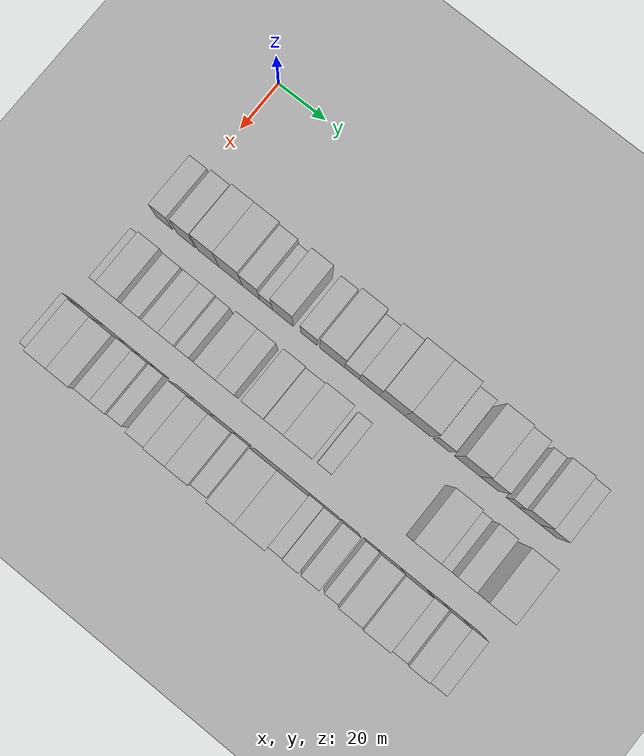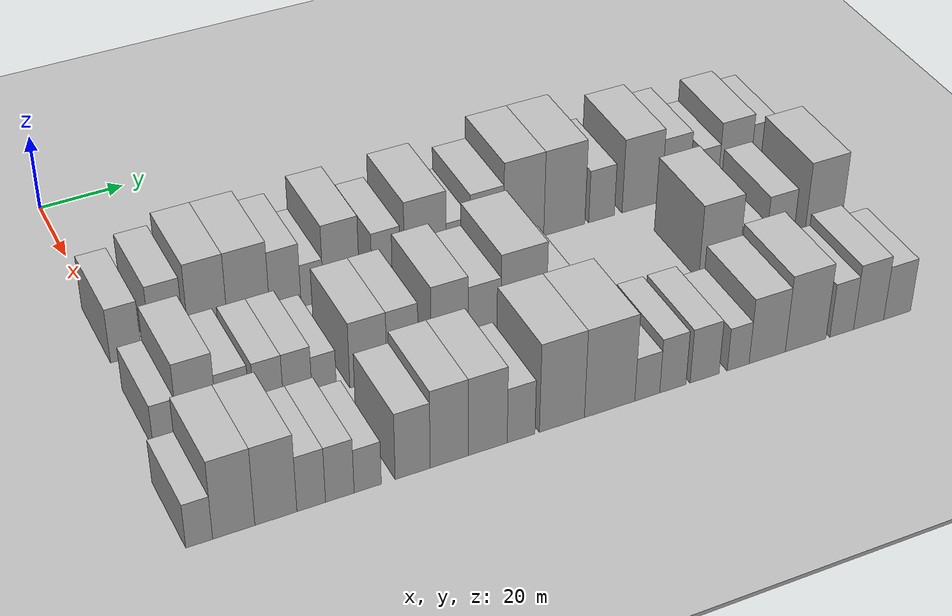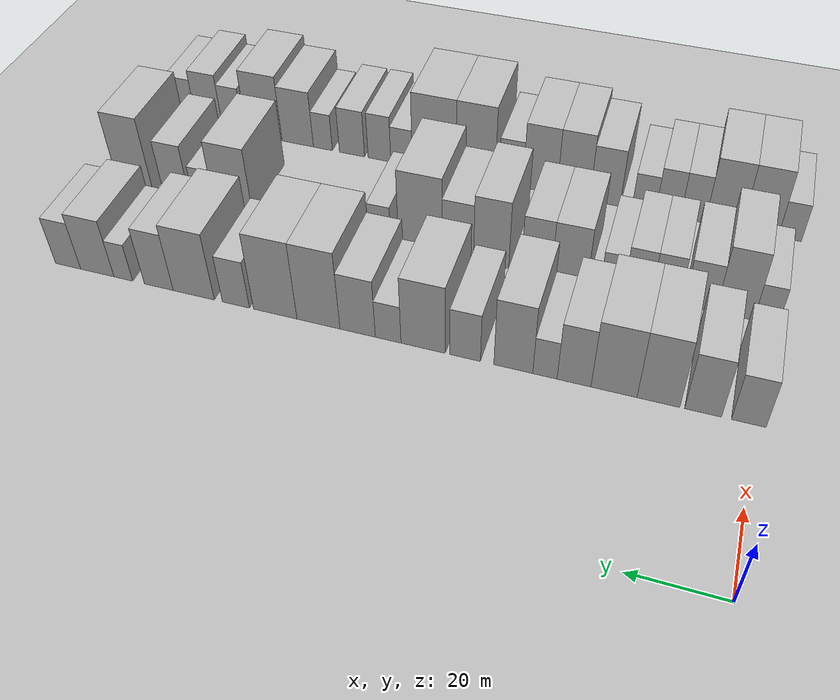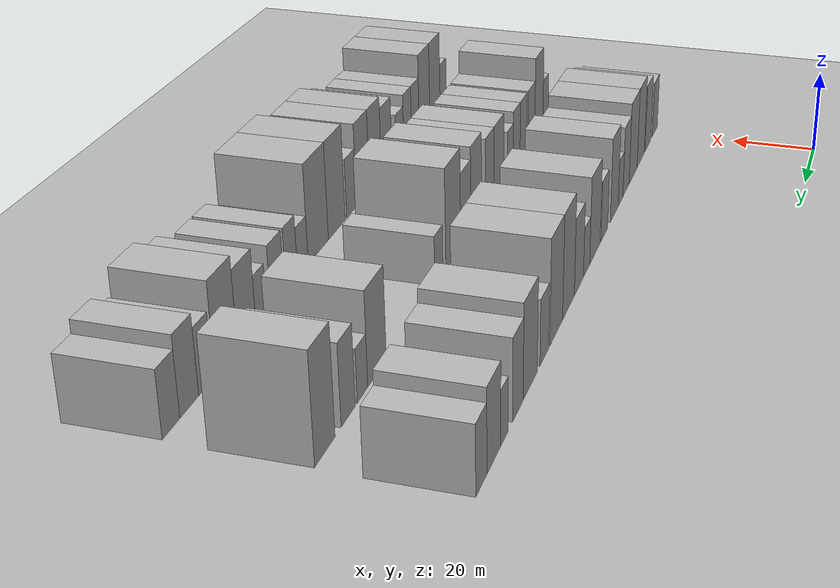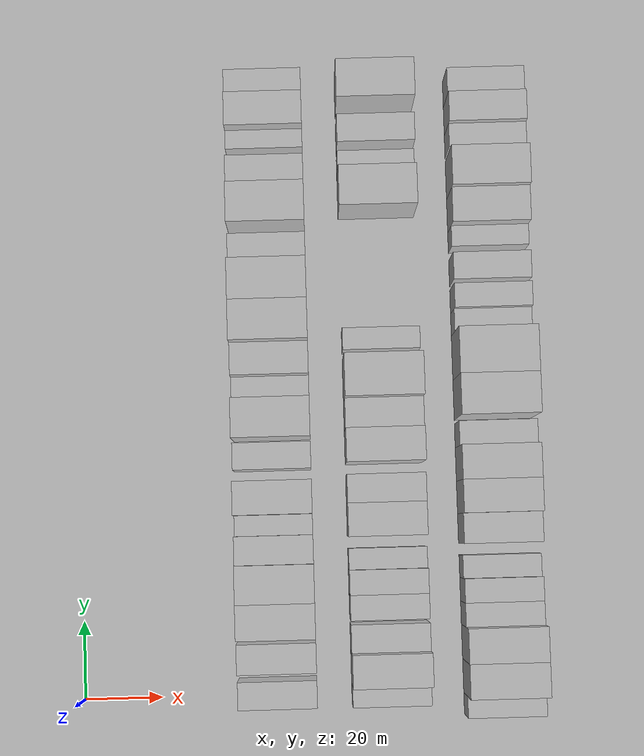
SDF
<sdf version="1.6">
 <world name="default">
  <include><name>ground_plane_1</name><uri>model://HANNAS_ground_plane</uri></include>
  <include>
   <name>ground_plane_2</name>
   <uri>model://HANNAS_ground_plane</uri>
   <pose>100 0 0  0 0 0</pose>
  </include>
  <model name="building_40">
   <static>1</static>
   <pose>50.0000 1.0177 0 0.000000 0.000000 0.000000</pose>
   <link name="link">
    <pose>0 0 7.50 0 0 0</pose>
    <collision name="collision"><geometry><box><size>20.0000 6.9742 15.0000</size></box></geometry></collision>
    <visual name="visual">
     <cast_shadows>0</cast_shadows>
     <geometry><box><size>20.0000 6.9742 15.0000</size></box></geometry>
     <material>
      <script>
       <uri>model://HANNAS_wall/materials/scripts</uri>
       <uri>model://HANNAS_wall/materials/textures</uri>
       <name>vrc/HANNAS_wall</name>
      </script>
     </material>
    </visual>
   </link>
  </model>
  <model name="building_41">
   <static>1</static>
   <pose>50.0000 10.2824 0 0.000000 0.000000 0.000000</pose>
   <link name="link">
    <pose>0 0 9.00 0 0 0</pose>
    <collision name="collision"><geometry><box><size>20.0000 7.5551 18.0000</size></box></geometry></collision>
    <visual name="visual">
     <cast_shadows>0</cast_shadows>
     <geometry><box><size>20.0000 7.5551 18.0000</size></box></geometry>
     <material>
      <script>
       <uri>model://HANNAS_wall/materials/scripts</uri>
       <uri>model://HANNAS_wall/materials/textures</uri>
       <name>vrc/HANNAS_wall</name>
      </script>
     </material>
    </visual>
   </link>
  </model>
  <model name="building_42">
   <static>1</static>
   <pose>50.0000 19.5193 0 0.000000 0.000000 0.000000</pose>
   <link name="link">
    <pose>0 0 10.50 0 0 0</pose>
    <collision name="collision"><geometry><box><size>20.0000 8.9188 21.0000</size></box></geometry></collision>
    <visual name="visual">
     <cast_shadows>0</cast_shadows>
     <geometry><box><size>20.0000 8.9188 21.0000</size></box></geometry>
     <material>
      <script>
       <uri>model://HANNAS_wall/materials/scripts</uri>
       <uri>model://HANNAS_wall/materials/textures</uri>
       <name>vrc/HANNAS_wall</name>
      </script>
     </material>
    </visual>
   </link>
  </model>
  <model name="building_43">
   <static>1</static>
   <pose>50.0000 28.8497 0 0.000000 0.000000 0.000000</pose>
   <link name="link">
    <pose>0 0 10.50 0 0 0</pose>
    <collision name="collision"><geometry><box><size>20.0000 9.7421 21.0000</size></box></geometry></collision>
    <visual name="visual">
     <cast_shadows>0</cast_shadows>
     <geometry><box><size>20.0000 9.7421 21.0000</size></box></geometry>
     <material>
      <script>
       <uri>model://HANNAS_wall/materials/scripts</uri>
       <uri>model://HANNAS_wall/materials/textures</uri>
       <name>vrc/HANNAS_wall</name>
      </script>
     </material>
    </visual>
   </link>
  </model>
  <model name="building_44">
   <static>1</static>
   <pose>50.0000 37.3700 0 0.000000 0.000000 0.000000</pose>
   <link name="link">
    <pose>0 0 9.00 0 0 0</pose>
    <collision name="collision"><geometry><box><size>20.0000 7.2984 18.0000</size></box></geometry></collision>
    <visual name="visual">
     <cast_shadows>0</cast_shadows>
     <geometry><box><size>20.0000 7.2984 18.0000</size></box></geometry>
     <material>
      <script>
       <uri>model://HANNAS_wall/materials/scripts</uri>
       <uri>model://HANNAS_wall/materials/textures</uri>
       <name>vrc/HANNAS_wall</name>
      </script>
     </material>
    </visual>
   </link>
  </model>
  <model name="building_45">
   <static>1</static>
   <pose>50.0000 43.6672 0 0.000000 0.000000 0.000000</pose>
   <link name="link">
    <pose>0 0 6.00 0 0 0</pose>
    <collision name="collision"><geometry><box><size>20.0000 5.2960 12.0000</size></box></geometry></collision>
    <visual name="visual">
     <cast_shadows>0</cast_shadows>
     <geometry><box><size>20.0000 5.2960 12.0000</size></box></geometry>
     <material>
      <script>
       <uri>model://HANNAS_wall/materials/scripts</uri>
       <uri>model://HANNAS_wall/materials/textures</uri>
       <name>vrc/HANNAS_wall</name>
      </script>
     </material>
    </visual>
   </link>
  </model>
  <model name="building_46">
   <static>1</static>
   <pose>50.0000 50.5964 0 0.000000 0.000000 0.000000</pose>
   <link name="link">
    <pose>0 0 10.50 0 0 0</pose>
    <collision name="collision"><geometry><box><size>20.0000 8.5625 21.0000</size></box></geometry></collision>
    <visual name="visual">
     <cast_shadows>0</cast_shadows>
     <geometry><box><size>20.0000 8.5625 21.0000</size></box></geometry>
     <material>
      <script>
       <uri>model://HANNAS_wall/materials/scripts</uri>
       <uri>model://HANNAS_wall/materials/textures</uri>
       <name>vrc/HANNAS_wall</name>
      </script>
     </material>
    </visual>
   </link>
  </model>
  <model name="building_47">
   <static>1</static>
   <pose>50.0000 61.3244 0 0.000000 0.000000 0.000000</pose>
   <link name="link">
    <pose>0 0 7.50 0 0 0</pose>
    <collision name="collision"><geometry><box><size>20.0000 6.8935 15.0000</size></box></geometry></collision>
    <visual name="visual">
     <cast_shadows>0</cast_shadows>
     <geometry><box><size>20.0000 6.8935 15.0000</size></box></geometry>
     <material>
      <script>
       <uri>model://HANNAS_wall/materials/scripts</uri>
       <uri>model://HANNAS_wall/materials/textures</uri>
       <name>vrc/HANNAS_wall</name>
      </script>
     </material>
    </visual>
   </link>
  </model>
  <model name="building_48">
   <static>1</static>
   <pose>50.0000 70.8356 0 0.000000 0.000000 0.000000</pose>
   <link name="link">
    <pose>0 0 10.50 0 0 0</pose>
    <collision name="collision"><geometry><box><size>20.0000 10.1289 21.0000</size></box></geometry></collision>
    <visual name="visual">
     <cast_shadows>0</cast_shadows>
     <geometry><box><size>20.0000 10.1289 21.0000</size></box></geometry>
     <material>
      <script>
       <uri>model://HANNAS_wall/materials/scripts</uri>
       <uri>model://HANNAS_wall/materials/textures</uri>
       <name>vrc/HANNAS_wall</name>
      </script>
     </material>
    </visual>
   </link>
  </model>
  <model name="building_49">
   <static>1</static>
   <pose>50.0000 78.8708 0 0.000000 0.000000 0.000000</pose>
   <link name="link">
    <pose>0 0 6.00 0 0 0</pose>
    <collision name="collision"><geometry><box><size>20.0000 5.9414 12.0000</size></box></geometry></collision>
    <visual name="visual">
     <cast_shadows>0</cast_shadows>
     <geometry><box><size>20.0000 5.9414 12.0000</size></box></geometry>
     <material>
      <script>
       <uri>model://HANNAS_wall/materials/scripts</uri>
       <uri>model://HANNAS_wall/materials/textures</uri>
       <name>vrc/HANNAS_wall</name>
      </script>
     </material>
    </visual>
   </link>
  </model>
  <model name="building_50">
   <static>1</static>
   <pose>50.0000 85.9919 0 0.000000 0.000000 0.000000</pose>
   <link name="link">
    <pose>0 0 9.00 0 0 0</pose>
    <collision name="collision"><geometry><box><size>20.0000 8.3008 18.0000</size></box></geometry></collision>
    <visual name="visual">
     <cast_shadows>0</cast_shadows>
     <geometry><box><size>20.0000 8.3008 18.0000</size></box></geometry>
     <material>
      <script>
       <uri>model://HANNAS_wall/materials/scripts</uri>
       <uri>model://HANNAS_wall/materials/textures</uri>
       <name>vrc/HANNAS_wall</name>
      </script>
     </material>
    </visual>
   </link>
  </model>
  <model name="building_51">
   <static>1</static>
   <pose>50.0000 95.2712 0 0.000000 0.000000 0.000000</pose>
   <link name="link">
    <pose>0 0 12.00 0 0 0</pose>
    <collision name="collision"><geometry><box><size>20.0000 10.2578 24.0000</size></box></geometry></collision>
    <visual name="visual">
     <cast_shadows>0</cast_shadows>
     <geometry><box><size>20.0000 10.2578 24.0000</size></box></geometry>
     <material>
      <script>
       <uri>model://HANNAS_wall/materials/scripts</uri>
       <uri>model://HANNAS_wall/materials/textures</uri>
       <name>vrc/HANNAS_wall</name>
      </script>
     </material>
    </visual>
   </link>
  </model>
  <model name="building_52">
   <static>1</static>
   <pose>50.0000 105.6803 0 0.000000 0.000000 0.000000</pose>
   <link name="link">
    <pose>0 0 12.00 0 0 0</pose>
    <collision name="collision"><geometry><box><size>20.0000 10.5602 24.0000</size></box></geometry></collision>
    <visual name="visual">
     <cast_shadows>0</cast_shadows>
     <geometry><box><size>20.0000 10.5602 24.0000</size></box></geometry>
     <material>
      <script>
       <uri>model://HANNAS_wall/materials/scripts</uri>
       <uri>model://HANNAS_wall/materials/textures</uri>
       <name>vrc/HANNAS_wall</name>
      </script>
     </material>
    </visual>
   </link>
  </model>
  <model name="building_53">
   <static>1</static>
   <pose>50.0000 115.3064 0 0.000000 0.000000 0.000000</pose>
   <link name="link">
    <pose>0 0 7.50 0 0 0</pose>
    <collision name="collision"><geometry><box><size>20.0000 6.6921 15.0000</size></box></geometry></collision>
    <visual name="visual">
     <cast_shadows>0</cast_shadows>
     <geometry><box><size>20.0000 6.6921 15.0000</size></box></geometry>
     <material>
      <script>
       <uri>model://HANNAS_wall/materials/scripts</uri>
       <uri>model://HANNAS_wall/materials/textures</uri>
       <name>vrc/HANNAS_wall</name>
      </script>
     </material>
    </visual>
   </link>
  </model>
  <model name="building_54">
   <static>1</static>
   <pose>50.0000 125.8297 0 0.000000 0.000000 0.000000</pose>
   <link name="link">
    <pose>0 0 10.50 0 0 0</pose>
    <collision name="collision"><geometry><box><size>20.0000 10.3545 21.0000</size></box></geometry></collision>
    <visual name="visual">
     <cast_shadows>0</cast_shadows>
     <geometry><box><size>20.0000 10.3545 21.0000</size></box></geometry>
     <material>
      <script>
       <uri>model://HANNAS_wall/materials/scripts</uri>
       <uri>model://HANNAS_wall/materials/textures</uri>
       <name>vrc/HANNAS_wall</name>
      </script>
     </material>
    </visual>
   </link>
  </model>
  <model name="building_55">
   <static>1</static>
   <pose>50.0000 134.6858 0 0.000000 0.000000 0.000000</pose>
   <link name="link">
    <pose>0 0 9.00 0 0 0</pose>
    <collision name="collision"><geometry><box><size>20.0000 7.3576 18.0000</size></box></geometry></collision>
    <visual name="visual">
     <cast_shadows>0</cast_shadows>
     <geometry><box><size>20.0000 7.3576 18.0000</size></box></geometry>
     <material>
      <script>
       <uri>model://HANNAS_wall/materials/scripts</uri>
       <uri>model://HANNAS_wall/materials/textures</uri>
       <name>vrc/HANNAS_wall</name>
      </script>
     </material>
    </visual>
   </link>
  </model>
  <model name="building_56">
   <static>1</static>
   <pose>50.0000 143.8000 0 0.000000 0.000000 0.000000</pose>
   <link name="link">
    <pose>0 0 6.00 0 0 0</pose>
    <collision name="collision"><geometry><box><size>20.0000 4.8707 12.0000</size></box></geometry></collision>
    <visual name="visual">
     <cast_shadows>0</cast_shadows>
     <geometry><box><size>20.0000 4.8707 12.0000</size></box></geometry>
     <material>
      <script>
       <uri>model://HANNAS_wall/materials/scripts</uri>
       <uri>model://HANNAS_wall/materials/textures</uri>
       <name>vrc/HANNAS_wall</name>
      </script>
     </material>
    </visual>
   </link>
  </model>
  <model name="building_57">
   <static>1</static>
   <pose>50.0000 150.5925 0 0.000000 0.000000 0.000000</pose>
   <link name="link">
    <pose>0 0 9.00 0 0 0</pose>
    <collision name="collision"><geometry><box><size>20.0000 8.7143 18.0000</size></box></geometry></collision>
    <visual name="visual">
     <cast_shadows>0</cast_shadows>
     <geometry><box><size>20.0000 8.7143 18.0000</size></box></geometry>
     <material>
      <script>
       <uri>model://HANNAS_wall/materials/scripts</uri>
       <uri>model://HANNAS_wall/materials/textures</uri>
       <name>vrc/HANNAS_wall</name>
      </script>
     </material>
    </visual>
   </link>
  </model>
  <model name="building_58">
   <static>1</static>
   <pose>50.0000 158.2829 0 0.000000 0.000000 0.000000</pose>
   <link name="link">
    <pose>0 0 7.50 0 0 0</pose>
    <collision name="collision"><geometry><box><size>20.0000 6.6665 15.0000</size></box></geometry></collision>
    <visual name="visual">
     <cast_shadows>0</cast_shadows>
     <geometry><box><size>20.0000 6.6665 15.0000</size></box></geometry>
     <material>
      <script>
       <uri>model://HANNAS_wall/materials/scripts</uri>
       <uri>model://HANNAS_wall/materials/textures</uri>
       <name>vrc/HANNAS_wall</name>
      </script>
     </material>
    </visual>
   </link>
  </model>
  <model name="building_114">
   <static>1</static>
   <pose>79.0000 -0.2153 0 0.000000 0.000000 0.000000</pose>
   <link name="link">
    <pose>0 0 6.00 0 0 0</pose>
    <collision name="collision"><geometry><box><size>20.0000 5.3804 12.0000</size></box></geometry></collision>
    <visual name="visual">
     <cast_shadows>0</cast_shadows>
     <geometry><box><size>20.0000 5.3804 12.0000</size></box></geometry>
     <material>
      <script>
       <uri>model://HANNAS_wall/materials/scripts</uri>
       <uri>model://HANNAS_wall/materials/textures</uri>
       <name>vrc/HANNAS_wall</name>
      </script>
     </material>
    </visual>
   </link>
  </model>
  <model name="building_115">
   <static>1</static>
   <pose>79.0000 6.6951 0 0.000000 0.000000 0.000000</pose>
   <link name="link">
    <pose>0 0 10.50 0 0 0</pose>
    <collision name="collision"><geometry><box><size>20.0000 8.4403 21.0000</size></box></geometry></collision>
    <visual name="visual">
     <cast_shadows>0</cast_shadows>
     <geometry><box><size>20.0000 8.4403 21.0000</size></box></geometry>
     <material>
      <script>
       <uri>model://HANNAS_wall/materials/scripts</uri>
       <uri>model://HANNAS_wall/materials/textures</uri>
       <name>vrc/HANNAS_wall</name>
      </script>
     </material>
    </visual>
   </link>
  </model>
  <model name="building_116">
   <static>1</static>
   <pose>79.0000 14.4837 0 0.000000 0.000000 0.000000</pose>
   <link name="link">
    <pose>0 0 7.50 0 0 0</pose>
    <collision name="collision"><geometry><box><size>20.0000 7.1367 15.0000</size></box></geometry></collision>
    <visual name="visual">
     <cast_shadows>0</cast_shadows>
     <geometry><box><size>20.0000 7.1367 15.0000</size></box></geometry>
     <material>
      <script>
       <uri>model://HANNAS_wall/materials/scripts</uri>
       <uri>model://HANNAS_wall/materials/textures</uri>
       <name>vrc/HANNAS_wall</name>
      </script>
     </material>
    </visual>
   </link>
  </model>
  <model name="building_117">
   <static>1</static>
   <pose>79.0000 22.2401 0 0.000000 0.000000 0.000000</pose>
   <link name="link">
    <pose>0 0 7.50 0 0 0</pose>
    <collision name="collision"><geometry><box><size>20.0000 6.3761 15.0000</size></box></geometry></collision>
    <visual name="visual">
     <cast_shadows>0</cast_shadows>
     <geometry><box><size>20.0000 6.3761 15.0000</size></box></geometry>
     <material>
      <script>
       <uri>model://HANNAS_wall/materials/scripts</uri>
       <uri>model://HANNAS_wall/materials/textures</uri>
       <name>vrc/HANNAS_wall</name>
      </script>
     </material>
    </visual>
   </link>
  </model>
  <model name="building_118">
   <static>1</static>
   <pose>79.0000 28.6044 0 0.000000 0.000000 0.000000</pose>
   <link name="link">
    <pose>0 0 7.50 0 0 0</pose>
    <collision name="collision"><geometry><box><size>20.0000 6.3525 15.0000</size></box></geometry></collision>
    <visual name="visual">
     <cast_shadows>0</cast_shadows>
     <geometry><box><size>20.0000 6.3525 15.0000</size></box></geometry>
     <material>
      <script>
       <uri>model://HANNAS_wall/materials/scripts</uri>
       <uri>model://HANNAS_wall/materials/textures</uri>
       <name>vrc/HANNAS_wall</name>
      </script>
     </material>
    </visual>
   </link>
  </model>
  <model name="building_119">
   <static>1</static>
   <pose>79.0000 34.5072 0 0.000000 0.000000 0.000000</pose>
   <link name="link">
    <pose>0 0 6.00 0 0 0</pose>
    <collision name="collision"><geometry><box><size>20.0000 5.4531 12.0000</size></box></geometry></collision>
    <visual name="visual">
     <cast_shadows>0</cast_shadows>
     <geometry><box><size>20.0000 5.4531 12.0000</size></box></geometry>
     <material>
      <script>
       <uri>model://HANNAS_wall/materials/scripts</uri>
       <uri>model://HANNAS_wall/materials/textures</uri>
       <name>vrc/HANNAS_wall</name>
      </script>
     </material>
    </visual>
   </link>
  </model>
  <model name="building_120">
   <static>1</static>
   <pose>79.0000 44.4714 0 0.000000 0.000000 0.000000</pose>
   <link name="link">
    <pose>0 0 9.00 0 0 0</pose>
    <collision name="collision"><geometry><box><size>20.0000 8.4752 18.0000</size></box></geometry></collision>
    <visual name="visual">
     <cast_shadows>0</cast_shadows>
     <geometry><box><size>20.0000 8.4752 18.0000</size></box></geometry>
     <material>
      <script>
       <uri>model://HANNAS_wall/materials/scripts</uri>
       <uri>model://HANNAS_wall/materials/textures</uri>
       <name>vrc/HANNAS_wall</name>
      </script>
     </material>
    </visual>
   </link>
  </model>
  <model name="building_121">
   <static>1</static>
   <pose>79.0000 52.3282 0 0.000000 0.000000 0.000000</pose>
   <link name="link">
    <pose>0 0 9.00 0 0 0</pose>
    <collision name="collision"><geometry><box><size>20.0000 7.2385 18.0000</size></box></geometry></collision>
    <visual name="visual">
     <cast_shadows>0</cast_shadows>
     <geometry><box><size>20.0000 7.2385 18.0000</size></box></geometry>
     <material>
      <script>
       <uri>model://HANNAS_wall/materials/scripts</uri>
       <uri>model://HANNAS_wall/materials/textures</uri>
       <name>vrc/HANNAS_wall</name>
      </script>
     </material>
    </visual>
   </link>
  </model>
  <model name="building_122">
   <static>1</static>
   <pose>79.0000 63.2395 0 0.000000 0.000000 0.000000</pose>
   <link name="link">
    <pose>0 0 10.50 0 0 0</pose>
    <collision name="collision"><geometry><box><size>20.0000 8.5841 21.0000</size></box></geometry></collision>
    <visual name="visual">
     <cast_shadows>0</cast_shadows>
     <geometry><box><size>20.0000 8.5841 21.0000</size></box></geometry>
     <material>
      <script>
       <uri>model://HANNAS_wall/materials/scripts</uri>
       <uri>model://HANNAS_wall/materials/textures</uri>
       <name>vrc/HANNAS_wall</name>
      </script>
     </material>
    </visual>
   </link>
  </model>
  <model name="building_123">
   <static>1</static>
   <pose>79.0000 71.3869 0 0.000000 0.000000 0.000000</pose>
   <link name="link">
    <pose>0 0 9.00 0 0 0</pose>
    <collision name="collision"><geometry><box><size>20.0000 7.7107 18.0000</size></box></geometry></collision>
    <visual name="visual">
     <cast_shadows>0</cast_shadows>
     <geometry><box><size>20.0000 7.7107 18.0000</size></box></geometry>
     <material>
      <script>
       <uri>model://HANNAS_wall/materials/scripts</uri>
       <uri>model://HANNAS_wall/materials/textures</uri>
       <name>vrc/HANNAS_wall</name>
      </script>
     </material>
    </visual>
   </link>
  </model>
  <model name="building_124">
   <static>1</static>
   <pose>79.0000 80.6894 0 0.000000 0.000000 0.000000</pose>
   <link name="link">
    <pose>0 0 12.00 0 0 0</pose>
    <collision name="collision"><geometry><box><size>20.0000 10.8942 24.0000</size></box></geometry></collision>
    <visual name="visual">
     <cast_shadows>0</cast_shadows>
     <geometry><box><size>20.0000 10.8942 24.0000</size></box></geometry>
     <material>
      <script>
       <uri>model://HANNAS_wall/materials/scripts</uri>
       <uri>model://HANNAS_wall/materials/textures</uri>
       <name>vrc/HANNAS_wall</name>
      </script>
     </material>
    </visual>
   </link>
  </model>
  <model name="building_125">
   <static>1</static>
   <pose>79.0000 90.9729 0 0.000000 0.000000 0.000000</pose>
   <link name="link">
    <pose>0 0 6.00 0 0 0</pose>
    <collision name="collision"><geometry><box><size>20.0000 5.6728 12.0000</size></box></geometry></collision>
    <visual name="visual">
     <cast_shadows>0</cast_shadows>
     <geometry><box><size>20.0000 5.6728 12.0000</size></box></geometry>
     <material>
      <script>
       <uri>model://HANNAS_wall/materials/scripts</uri>
       <uri>model://HANNAS_wall/materials/textures</uri>
       <name>vrc/HANNAS_wall</name>
      </script>
     </material>
    </visual>
   </link>
  </model>
  <model name="building_126">
   <static>1</static>
   <pose>79.0000 129.3129 0 0.000000 0.000000 0.000000</pose>
   <link name="link">
    <pose>0 0 10.50 0 0 0</pose>
    <collision name="collision"><geometry><box><size>20.0000 10.3358 21.0000</size></box></geometry></collision>
    <visual name="visual">
     <cast_shadows>0</cast_shadows>
     <geometry><box><size>20.0000 10.3358 21.0000</size></box></geometry>
     <material>
      <script>
       <uri>model://HANNAS_wall/materials/scripts</uri>
       <uri>model://HANNAS_wall/materials/textures</uri>
       <name>vrc/HANNAS_wall</name>
      </script>
     </material>
    </visual>
   </link>
  </model>
  <model name="building_127">
   <static>1</static>
   <pose>79.0000 137.3124 0 0.000000 0.000000 0.000000</pose>
   <link name="link">
    <pose>0 0 6.00 0 0 0</pose>
    <collision name="collision"><geometry><box><size>20.0000 5.6631 12.0000</size></box></geometry></collision>
    <visual name="visual">
     <cast_shadows>0</cast_shadows>
     <geometry><box><size>20.0000 5.6631 12.0000</size></box></geometry>
     <material>
      <script>
       <uri>model://HANNAS_wall/materials/scripts</uri>
       <uri>model://HANNAS_wall/materials/textures</uri>
       <name>vrc/HANNAS_wall</name>
      </script>
     </material>
    </visual>
   </link>
  </model>
  <model name="building_128">
   <static>1</static>
   <pose>79.0000 144.7446 0 0.000000 0.000000 0.000000</pose>
   <link name="link">
    <pose>0 0 9.00 0 0 0</pose>
    <collision name="collision"><geometry><box><size>20.0000 7.2014 18.0000</size></box></geometry></collision>
    <visual name="visual">
     <cast_shadows>0</cast_shadows>
     <geometry><box><size>20.0000 7.2014 18.0000</size></box></geometry>
     <material>
      <script>
       <uri>model://HANNAS_wall/materials/scripts</uri>
       <uri>model://HANNAS_wall/materials/textures</uri>
       <name>vrc/HANNAS_wall</name>
      </script>
     </material>
    </visual>
   </link>
  </model>
  <model name="building_129">
   <static>1</static>
   <pose>79.0000 156.2249 0 0.000000 0.000000 0.000000</pose>
   <link name="link">
    <pose>0 0 12.00 0 0 0</pose>
    <collision name="collision"><geometry><box><size>20.0000 9.7591 24.0000</size></box></geometry></collision>
    <visual name="visual">
     <cast_shadows>0</cast_shadows>
     <geometry><box><size>20.0000 9.7591 24.0000</size></box></geometry>
     <material>
      <script>
       <uri>model://HANNAS_wall/materials/scripts</uri>
       <uri>model://HANNAS_wall/materials/textures</uri>
       <name>vrc/HANNAS_wall</name>
      </script>
     </material>
    </visual>
   </link>
  </model>
  <model name="building_183">
   <static>1</static>
   <pose>108.0000 -3.5966 0 0.000000 0.000000 0.000000</pose>
   <link name="link">
    <pose>0 0 6.00 0 0 0</pose>
    <collision name="collision"><geometry><box><size>20.0000 5.4894 12.0000</size></box></geometry></collision>
    <visual name="visual">
     <cast_shadows>0</cast_shadows>
     <geometry><box><size>20.0000 5.4894 12.0000</size></box></geometry>
     <material>
      <script>
       <uri>model://HANNAS_wall/materials/scripts</uri>
       <uri>model://HANNAS_wall/materials/textures</uri>
       <name>vrc/HANNAS_wall</name>
      </script>
     </material>
    </visual>
   </link>
  </model>
  <model name="building_184">
   <static>1</static>
   <pose>108.0000 3.5065 0 0.000000 0.000000 0.000000</pose>
   <link name="link">
    <pose>0 0 10.50 0 0 0</pose>
    <collision name="collision"><geometry><box><size>20.0000 8.7169 21.0000</size></box></geometry></collision>
    <visual name="visual">
     <cast_shadows>0</cast_shadows>
     <geometry><box><size>20.0000 8.7169 21.0000</size></box></geometry>
     <material>
      <script>
       <uri>model://HANNAS_wall/materials/scripts</uri>
       <uri>model://HANNAS_wall/materials/textures</uri>
       <name>vrc/HANNAS_wall</name>
      </script>
     </material>
    </visual>
   </link>
  </model>
  <model name="building_185">
   <static>1</static>
   <pose>108.0000 12.2656 0 0.000000 0.000000 0.000000</pose>
   <link name="link">
    <pose>0 0 10.50 0 0 0</pose>
    <collision name="collision"><geometry><box><size>20.0000 8.8012 21.0000</size></box></geometry></collision>
    <visual name="visual">
     <cast_shadows>0</cast_shadows>
     <geometry><box><size>20.0000 8.8012 21.0000</size></box></geometry>
     <material>
      <script>
       <uri>model://HANNAS_wall/materials/scripts</uri>
       <uri>model://HANNAS_wall/materials/textures</uri>
       <name>vrc/HANNAS_wall</name>
      </script>
     </material>
    </visual>
   </link>
  </model>
  <model name="building_186">
   <static>1</static>
   <pose>108.0000 19.6932 0 0.000000 0.000000 0.000000</pose>
   <link name="link">
    <pose>0 0 7.50 0 0 0</pose>
    <collision name="collision"><geometry><box><size>20.0000 6.0541 15.0000</size></box></geometry></collision>
    <visual name="visual">
     <cast_shadows>0</cast_shadows>
     <geometry><box><size>20.0000 6.0541 15.0000</size></box></geometry>
     <material>
      <script>
       <uri>model://HANNAS_wall/materials/scripts</uri>
       <uri>model://HANNAS_wall/materials/textures</uri>
       <name>vrc/HANNAS_wall</name>
      </script>
     </material>
    </visual>
   </link>
  </model>
  <model name="building_187">
   <static>1</static>
   <pose>108.0000 25.7743 0 0.000000 0.000000 0.000000</pose>
   <link name="link">
    <pose>0 0 7.50 0 0 0</pose>
    <collision name="collision"><geometry><box><size>20.0000 6.1081 15.0000</size></box></geometry></collision>
    <visual name="visual">
     <cast_shadows>0</cast_shadows>
     <geometry><box><size>20.0000 6.1081 15.0000</size></box></geometry>
     <material>
      <script>
       <uri>model://HANNAS_wall/materials/scripts</uri>
       <uri>model://HANNAS_wall/materials/textures</uri>
       <name>vrc/HANNAS_wall</name>
      </script>
     </material>
    </visual>
   </link>
  </model>
  <model name="building_188">
   <static>1</static>
   <pose>108.0000 31.7592 0 0.000000 0.000000 0.000000</pose>
   <link name="link">
    <pose>0 0 6.00 0 0 0</pose>
    <collision name="collision"><geometry><box><size>20.0000 5.8617 12.0000</size></box></geometry></collision>
    <visual name="visual">
     <cast_shadows>0</cast_shadows>
     <geometry><box><size>20.0000 5.8617 12.0000</size></box></geometry>
     <material>
      <script>
       <uri>model://HANNAS_wall/materials/scripts</uri>
       <uri>model://HANNAS_wall/materials/textures</uri>
       <name>vrc/HANNAS_wall</name>
      </script>
     </material>
    </visual>
   </link>
  </model>
  <model name="building_189">
   <static>1</static>
   <pose>108.0000 41.5327 0 0.000000 0.000000 0.000000</pose>
   <link name="link">
    <pose>0 0 9.00 0 0 0</pose>
    <collision name="collision"><geometry><box><size>20.0000 7.6853 18.0000</size></box></geometry></collision>
    <visual name="visual">
     <cast_shadows>0</cast_shadows>
     <geometry><box><size>20.0000 7.6853 18.0000</size></box></geometry>
     <material>
      <script>
       <uri>model://HANNAS_wall/materials/scripts</uri>
       <uri>model://HANNAS_wall/materials/textures</uri>
       <name>vrc/HANNAS_wall</name>
      </script>
     </material>
    </visual>
   </link>
  </model>
  <model name="building_190">
   <static>1</static>
   <pose>108.0000 49.5774 0 0.000000 0.000000 0.000000</pose>
   <link name="link">
    <pose>0 0 10.50 0 0 0</pose>
    <collision name="collision"><geometry><box><size>20.0000 8.4040 21.0000</size></box></geometry></collision>
    <visual name="visual">
     <cast_shadows>0</cast_shadows>
     <geometry><box><size>20.0000 8.4040 21.0000</size></box></geometry>
     <material>
      <script>
       <uri>model://HANNAS_wall/materials/scripts</uri>
       <uri>model://HANNAS_wall/materials/textures</uri>
       <name>vrc/HANNAS_wall</name>
      </script>
     </material>
    </visual>
   </link>
  </model>
  <model name="building_191">
   <static>1</static>
   <pose>108.0000 58.1524 0 0.000000 0.000000 0.000000</pose>
   <link name="link">
    <pose>0 0 10.50 0 0 0</pose>
    <collision name="collision"><geometry><box><size>20.0000 8.7460 21.0000</size></box></geometry></collision>
    <visual name="visual">
     <cast_shadows>0</cast_shadows>
     <geometry><box><size>20.0000 8.7460 21.0000</size></box></geometry>
     <material>
      <script>
       <uri>model://HANNAS_wall/materials/scripts</uri>
       <uri>model://HANNAS_wall/materials/textures</uri>
       <name>vrc/HANNAS_wall</name>
      </script>
     </material>
    </visual>
   </link>
  </model>
  <model name="building_192">
   <static>1</static>
   <pose>108.0000 65.6863 0 0.000000 0.000000 0.000000</pose>
   <link name="link">
    <pose>0 0 7.50 0 0 0</pose>
    <collision name="collision"><geometry><box><size>20.0000 6.3219 15.0000</size></box></geometry></collision>
    <visual name="visual">
     <cast_shadows>0</cast_shadows>
     <geometry><box><size>20.0000 6.3219 15.0000</size></box></geometry>
     <material>
      <script>
       <uri>model://HANNAS_wall/materials/scripts</uri>
       <uri>model://HANNAS_wall/materials/textures</uri>
       <name>vrc/HANNAS_wall</name>
      </script>
     </material>
    </visual>
   </link>
  </model>
  <model name="building_193">
   <static>1</static>
   <pose>108.0000 75.0401 0 0.000000 0.000000 0.000000</pose>
   <link name="link">
    <pose>0 0 12.00 0 0 0</pose>
    <collision name="collision"><geometry><box><size>20.0000 10.3856 24.0000</size></box></geometry></collision>
    <visual name="visual">
     <cast_shadows>0</cast_shadows>
     <geometry><box><size>20.0000 10.3856 24.0000</size></box></geometry>
     <material>
      <script>
       <uri>model://HANNAS_wall/materials/scripts</uri>
       <uri>model://HANNAS_wall/materials/textures</uri>
       <name>vrc/HANNAS_wall</name>
      </script>
     </material>
    </visual>
   </link>
  </model>
  <model name="building_194">
   <static>1</static>
   <pose>108.0000 86.1352 0 0.000000 0.000000 0.000000</pose>
   <link name="link">
    <pose>0 0 12.00 0 0 0</pose>
    <collision name="collision"><geometry><box><size>20.0000 11.8045 24.0000</size></box></geometry></collision>
    <visual name="visual">
     <cast_shadows>0</cast_shadows>
     <geometry><box><size>20.0000 11.8045 24.0000</size></box></geometry>
     <material>
      <script>
       <uri>model://HANNAS_wall/materials/scripts</uri>
       <uri>model://HANNAS_wall/materials/textures</uri>
       <name>vrc/HANNAS_wall</name>
      </script>
     </material>
    </visual>
   </link>
  </model>
  <model name="building_195">
   <static>1</static>
   <pose>108.0000 94.9942 0 0.000000 0.000000 0.000000</pose>
   <link name="link">
    <pose>0 0 6.00 0 0 0</pose>
    <collision name="collision"><geometry><box><size>20.0000 5.9136 12.0000</size></box></geometry></collision>
    <visual name="visual">
     <cast_shadows>0</cast_shadows>
     <geometry><box><size>20.0000 5.9136 12.0000</size></box></geometry>
     <material>
      <script>
       <uri>model://HANNAS_wall/materials/scripts</uri>
       <uri>model://HANNAS_wall/materials/textures</uri>
       <name>vrc/HANNAS_wall</name>
      </script>
     </material>
    </visual>
   </link>
  </model>
  <model name="building_196">
   <static>1</static>
   <pose>108.0000 101.0874 0 0.000000 0.000000 0.000000</pose>
   <link name="link">
    <pose>0 0 7.50 0 0 0</pose>
    <collision name="collision"><geometry><box><size>20.0000 6.2728 15.0000</size></box></geometry></collision>
    <visual name="visual">
     <cast_shadows>0</cast_shadows>
     <geometry><box><size>20.0000 6.2728 15.0000</size></box></geometry>
     <material>
      <script>
       <uri>model://HANNAS_wall/materials/scripts</uri>
       <uri>model://HANNAS_wall/materials/textures</uri>
       <name>vrc/HANNAS_wall</name>
      </script>
     </material>
    </visual>
   </link>
  </model>
  <model name="building_197">
   <static>1</static>
   <pose>108.0000 108.7310 0 0.000000 0.000000 0.000000</pose>
   <link name="link">
    <pose>0 0 7.50 0 0 0</pose>
    <collision name="collision"><geometry><box><size>20.0000 7.0143 15.0000</size></box></geometry></collision>
    <visual name="visual">
     <cast_shadows>0</cast_shadows>
     <geometry><box><size>20.0000 7.0143 15.0000</size></box></geometry>
     <material>
      <script>
       <uri>model://HANNAS_wall/materials/scripts</uri>
       <uri>model://HANNAS_wall/materials/textures</uri>
       <name>vrc/HANNAS_wall</name>
      </script>
     </material>
    </visual>
   </link>
  </model>
  <model name="building_198">
   <static>1</static>
   <pose>108.0000 116.9193 0 0.000000 0.000000 0.000000</pose>
   <link name="link">
    <pose>0 0 6.00 0 0 0</pose>
    <collision name="collision"><geometry><box><size>20.0000 5.3624 12.0000</size></box></geometry></collision>
    <visual name="visual">
     <cast_shadows>0</cast_shadows>
     <geometry><box><size>20.0000 5.3624 12.0000</size></box></geometry>
     <material>
      <script>
       <uri>model://HANNAS_wall/materials/scripts</uri>
       <uri>model://HANNAS_wall/materials/textures</uri>
       <name>vrc/HANNAS_wall</name>
      </script>
     </material>
    </visual>
   </link>
  </model>
  <model name="building_199">
   <static>1</static>
   <pose>108.0000 124.0860 0 0.000000 0.000000 0.000000</pose>
   <link name="link">
    <pose>0 0 9.00 0 0 0</pose>
    <collision name="collision"><geometry><box><size>20.0000 8.9710 18.0000</size></box></geometry></collision>
    <visual name="visual">
     <cast_shadows>0</cast_shadows>
     <geometry><box><size>20.0000 8.9710 18.0000</size></box></geometry>
     <material>
      <script>
       <uri>model://HANNAS_wall/materials/scripts</uri>
       <uri>model://HANNAS_wall/materials/textures</uri>
       <name>vrc/HANNAS_wall</name>
      </script>
     </material>
    </visual>
   </link>
  </model>
  <model name="building_200">
   <static>1</static>
   <pose>108.0000 133.6783 0 0.000000 0.000000 0.000000</pose>
   <link name="link">
    <pose>0 0 10.50 0 0 0</pose>
    <collision name="collision"><geometry><box><size>20.0000 10.2137 21.0000</size></box></geometry></collision>
    <visual name="visual">
     <cast_shadows>0</cast_shadows>
     <geometry><box><size>20.0000 10.2137 21.0000</size></box></geometry>
     <material>
      <script>
       <uri>model://HANNAS_wall/materials/scripts</uri>
       <uri>model://HANNAS_wall/materials/textures</uri>
       <name>vrc/HANNAS_wall</name>
      </script>
     </material>
    </visual>
   </link>
  </model>
  <model name="building_201">
   <static>1</static>
   <pose>108.0000 142.7900 0 0.000000 0.000000 0.000000</pose>
   <link name="link">
    <pose>0 0 7.50 0 0 0</pose>
    <collision name="collision"><geometry><box><size>20.0000 6.0096 15.0000</size></box></geometry></collision>
    <visual name="visual">
     <cast_shadows>0</cast_shadows>
     <geometry><box><size>20.0000 6.0096 15.0000</size></box></geometry>
     <material>
      <script>
       <uri>model://HANNAS_wall/materials/scripts</uri>
       <uri>model://HANNAS_wall/materials/textures</uri>
       <name>vrc/HANNAS_wall</name>
      </script>
     </material>
    </visual>
   </link>
  </model>
  <model name="building_202">
   <static>1</static>
   <pose>108.0000 149.6680 0 0.000000 0.000000 0.000000</pose>
   <link name="link">
    <pose>0 0 9.00 0 0 0</pose>
    <collision name="collision"><geometry><box><size>20.0000 7.7465 18.0000</size></box></geometry></collision>
    <visual name="visual">
     <cast_shadows>0</cast_shadows>
     <geometry><box><size>20.0000 7.7465 18.0000</size></box></geometry>
     <material>
      <script>
       <uri>model://HANNAS_wall/materials/scripts</uri>
       <uri>model://HANNAS_wall/materials/textures</uri>
       <name>vrc/HANNAS_wall</name>
      </script>
     </material>
    </visual>
   </link>
  </model>
  <model name="building_203">
   <static>1</static>
   <pose>108.0000 157.0308 0 0.000000 0.000000 0.000000</pose>
   <link name="link">
    <pose>0 0 7.50 0 0 0</pose>
    <collision name="collision"><geometry><box><size>20.0000 6.9791 15.0000</size></box></geometry></collision>
    <visual name="visual">
     <cast_shadows>0</cast_shadows>
     <geometry><box><size>20.0000 6.9791 15.0000</size></box></geometry>
     <material>
      <script>
       <uri>model://HANNAS_wall/materials/scripts</uri>
       <uri>model://HANNAS_wall/materials/textures</uri>
       <name>vrc/HANNAS_wall</name>
      </script>
     </material>
    </visual>
   </link>
  </model>
 </world>
</sdf>
